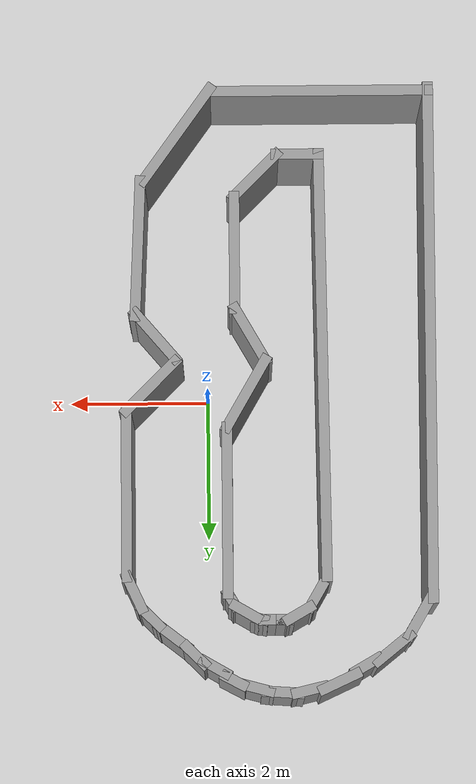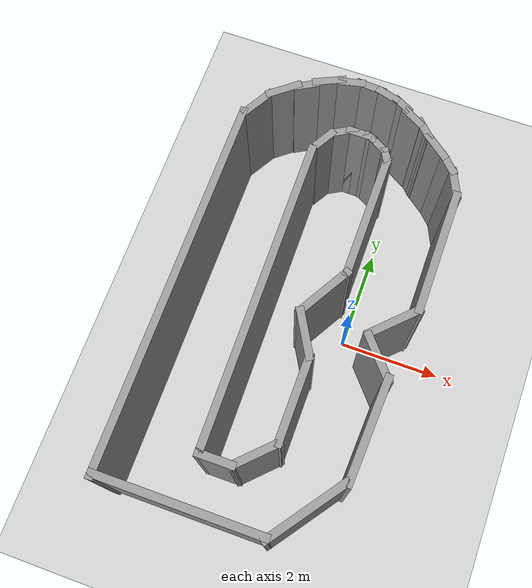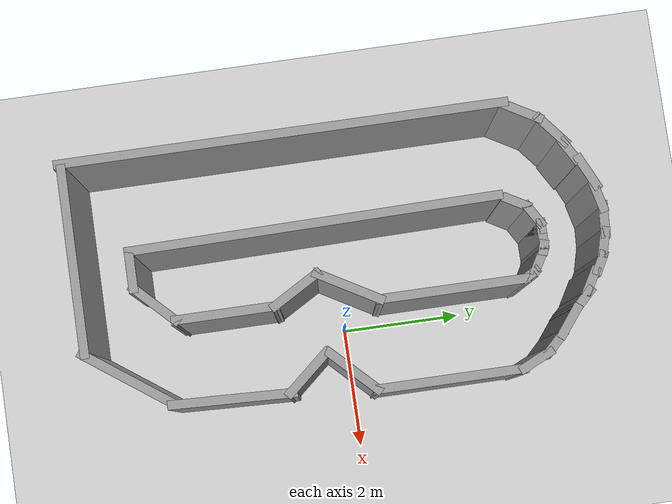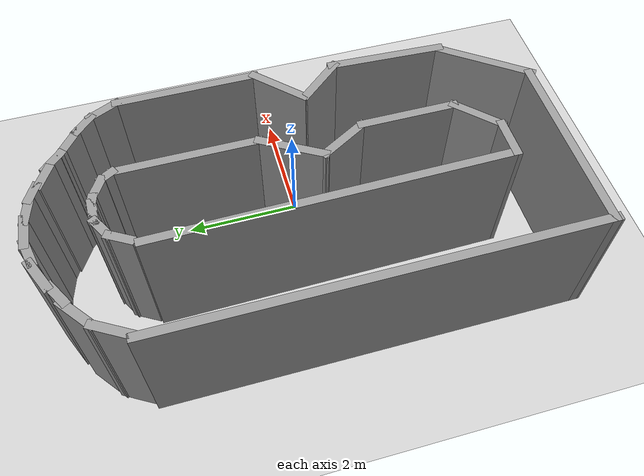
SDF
<sdf version="1.7">
 <world name="default">
  <scene><ambient>0.4 0.4 0.4 1</ambient><background>0.7 0.7 0.7 1</background><shadows>1</shadows></scene>
  <light name="sun" type="directional">
   <pose>0 0 10 0 -0 0</pose>
   <diffuse>0.8 0.8 0.8 1</diffuse>
   <specular>0.2 0.2 0.2 1</specular>
   <attenuation>
    <range>1000</range>
    <constant>0.9</constant>
    <linear>0.01</linear>
    <quadratic>0.001</quadratic>
   </attenuation>
   <direction>-0.5 0.1 -0.9</direction>
   <spot><inner_angle>0</inner_angle><outer_angle>0</outer_angle><falloff>0</falloff></spot>
  </light>
  <model name="ground_plane">
   <static>1</static>
   <link name="link">
    <collision name="collision">
     <geometry><plane><normal>0 0 1</normal><size>100 100</size></plane></geometry>
     <surface>
      <contact><collide_bitmask>65535</collide_bitmask></contact>
      <friction><ode><mu>100</mu><mu2>50</mu2></ode></friction>
     </surface>
    </collision>
    <visual name="visual">
     <cast_shadows>0</cast_shadows>
     <geometry><plane><normal>0 0 1</normal><size>100 100</size></plane></geometry>
     <material>
      <script><uri>file://media/materials/scripts/gazebo.material</uri><name>Gazebo/Grey</name></script>
     </material>
    </visual>
   </link>
  </model>
  <physics type="ode">
   <real_time_update_rate>1000</real_time_update_rate>
   <max_step_size>0.001</max_step_size>
   <real_time_factor>1</real_time_factor>
   <ode>
    <solver>
     <type>quick</type>
     <iters>150</iters>
     <precon_iters>0</precon_iters>
     <sor>1.4</sor>
     <use_dynamic_moi_rescaling>1</use_dynamic_moi_rescaling>
    </solver>
    <constraints>
     <cfm>1e-05</cfm>
     <erp>0.2</erp>
     <contact_max_correcting_vel>2000</contact_max_correcting_vel>
     <contact_surface_layer>0.01</contact_surface_layer>
    </constraints>
   </ode>
  </physics>
  <gravity>0 0 -9.8</gravity>
  <magnetic_field>6e-06 2.3e-05 -4.2e-05</magnetic_field>
  <atmosphere type="adiabatic"/>
  <spherical_coordinates>
   <surface_model>EARTH_WGS84</surface_model>
   <latitude_deg>0</latitude_deg>
   <longitude_deg>0</longitude_deg>
   <elevation>0</elevation>
   <heading_deg>0</heading_deg>
  </spherical_coordinates>
  <model name="world4">
   <pose>-0.988691 0.055441 0 0 -0 0</pose>
   <link name="Wall_0">
    <collision name="Wall_0_Collision">
     <geometry><box><size>3.24704 0.15 2.5</size></box></geometry>
     <pose>0 0 1.25 0 -0 0</pose>
    </collision>
    <visual name="Wall_0_Visual">
     <pose>0 0 1.25 0 -0 0</pose>
     <geometry><box><size>3.24704 0.15 2.5</size></box></geometry>
     <material>
      <script><uri>file://media/materials/scripts/gazebo.material</uri><name>Gazebo/Grey</name></script>
      <ambient>1 1 1 1</ambient>
     </material>
     <meta><layer>0</layer></meta>
    </visual>
    <pose>-0.621077 -4.25061 0 0 -0 3.14159</pose>
   </link>
   <link name="Wall_1">
    <collision name="Wall_1_Collision">
     <geometry><box><size>7.42288 0.15 2.5</size></box></geometry>
     <pose>0 0 1.25 0 -0 0</pose>
    </collision>
    <visual name="Wall_1_Visual">
     <pose>0 0 1.25 0 -0 0</pose>
     <geometry><box><size>7.42288 0.15 2.5</size></box></geometry>
     <material>
      <script><uri>file://media/materials/scripts/gazebo.material</uri><name>Gazebo/Grey</name></script>
      <ambient>1 1 1 1</ambient>
     </material>
     <meta><layer>0</layer></meta>
    </visual>
    <pose>-2.1696 -0.654396 0 0 -0 1.5708</pose>
   </link>
   <link name="Wall_15">
    <collision name="Wall_15_Collision">
     <geometry><box><size>0.75 0.15 2.5</size></box></geometry>
     <pose>0 0 1.25 0 -0 0</pose>
    </collision>
    <visual name="Wall_15_Visual">
     <pose>0 0 1.25 0 -0 0</pose>
     <geometry><box><size>0.75 0.15 2.5</size></box></geometry>
     <material>
      <script><uri>file://media/materials/scripts/gazebo.material</uri><name>Gazebo/Grey</name></script>
      <ambient>1 1 1 1</ambient>
     </material>
     <meta><layer>0</layer></meta>
    </visual>
    <pose>-1.97937 3.24185 0 0 -0 1.0472</pose>
   </link>
   <link name="Wall_16">
    <collision name="Wall_16_Collision">
     <geometry><box><size>0.726804 0.15 2.5</size></box></geometry>
     <pose>0 0 1.25 0 -0 0</pose>
    </collision>
    <visual name="Wall_16_Visual">
     <pose>0 0 1.25 0 -0 0</pose>
     <geometry><box><size>0.726804 0.15 2.5</size></box></geometry>
     <material>
      <script><uri>file://media/materials/scripts/gazebo.material</uri><name>Gazebo/Grey</name></script>
      <ambient>1 1 1 1</ambient>
     </material>
     <meta><layer>0</layer></meta>
    </visual>
    <pose>-1.60522 3.68312 0 0 -0 0.680536</pose>
   </link>
   <link name="Wall_17">
    <collision name="Wall_17_Collision">
     <geometry><box><size>0.5 0.15 2.5</size></box></geometry>
     <pose>0 0 1.25 0 -0 0</pose>
    </collision>
    <visual name="Wall_17_Visual">
     <pose>0 0 1.25 0 -0 0</pose>
     <geometry><box><size>0.5 0.15 2.5</size></box></geometry>
     <material>
      <script><uri>file://media/materials/scripts/gazebo.material</uri><name>Gazebo/Grey</name></script>
      <ambient>1 1 1 1</ambient>
     </material>
     <meta><layer>0</layer></meta>
    </visual>
    <pose>-1.2295 3.91186 0 0 -0 0.523599</pose>
   </link>
   <link name="Wall_18">
    <collision name="Wall_18_Collision">
     <geometry><box><size>0.661503 0.15 2.5</size></box></geometry>
     <pose>0 0 1.25 0 -0 0</pose>
    </collision>
    <visual name="Wall_18_Visual">
     <pose>0 0 1.25 0 -0 0</pose>
     <geometry><box><size>0.661503 0.15 2.5</size></box></geometry>
     <material>
      <script><uri>file://media/materials/scripts/gazebo.material</uri><name>Gazebo/Grey</name></script>
      <ambient>1 1 1 1</ambient>
     </material>
     <meta><layer>0</layer></meta>
    </visual>
    <pose>-0.845941 4.1472 0 0 -0 0.434299</pose>
   </link>
   <link name="Wall_19">
    <collision name="Wall_19_Collision">
     <geometry><box><size>0.538996 0.15 2.5</size></box></geometry>
     <pose>0 0 1.25 0 -0 0</pose>
    </collision>
    <visual name="Wall_19_Visual">
     <pose>0 0 1.25 0 -0 0</pose>
     <geometry><box><size>0.538996 0.15 2.5</size></box></geometry>
     <material>
      <script><uri>file://media/materials/scripts/gazebo.material</uri><name>Gazebo/Grey</name></script>
      <ambient>1 1 1 1</ambient>
     </material>
     <meta><layer>0</layer></meta>
    </visual>
    <pose>-0.424782 4.25988 0 0 -0 0.235031</pose>
   </link>
   <link name="Wall_20">
    <collision name="Wall_20_Collision">
     <geometry><box><size>0.609742 0.15 2.5</size></box></geometry>
     <pose>0 0 1.25 0 -0 0</pose>
    </collision>
    <visual name="Wall_20_Visual">
     <pose>0 0 1.25 0 -0 0</pose>
     <geometry><box><size>0.609742 0.15 2.5</size></box></geometry>
     <material>
      <script><uri>file://media/materials/scripts/gazebo.material</uri><name>Gazebo/Grey</name></script>
      <ambient>1 1 1 1</ambient>
     </material>
     <meta><layer>0</layer></meta>
    </visual>
    <pose>-0.04648 4.29013 0 0 -0 -0.065507</pose>
   </link>
   <link name="Wall_21">
    <collision name="Wall_21_Collision">
     <geometry><box><size>0.5 0.15 2.5</size></box></geometry>
     <pose>0 0 1.25 0 -0 0</pose>
    </collision>
    <visual name="Wall_21_Visual">
     <pose>0 0 1.25 0 -0 0</pose>
     <geometry><box><size>0.5 0.15 2.5</size></box></geometry>
     <material>
      <script><uri>file://media/materials/scripts/gazebo.material</uri><name>Gazebo/Grey</name></script>
      <ambient>1 1 1 1</ambient>
     </material>
     <meta><layer>0</layer></meta>
    </visual>
    <pose>0.311707 4.22979 0 0 -0 -0.261799</pose>
   </link>
   <link name="Wall_22">
    <collision name="Wall_22_Collision">
     <geometry><box><size>0.415638 0.15 2.5</size></box></geometry>
     <pose>0 0 1.25 0 -0 0</pose>
    </collision>
    <visual name="Wall_22_Visual">
     <pose>0 0 1.25 0 -0 0</pose>
     <geometry><box><size>0.415638 0.15 2.5</size></box></geometry>
     <material>
      <script><uri>file://media/materials/scripts/gazebo.material</uri><name>Gazebo/Grey</name></script>
      <ambient>1 1 1 1</ambient>
     </material>
     <meta><layer>0</layer></meta>
    </visual>
    <pose>0.638262 4.12217 0 0 -0 -0.488399</pose>
   </link>
   <link name="Wall_23">
    <collision name="Wall_23_Collision">
     <geometry><box><size>0.5 0.15 2.5</size></box></geometry>
     <pose>0 0 1.25 0 -0 0</pose>
    </collision>
    <visual name="Wall_23_Visual">
     <pose>0 0 1.25 0 -0 0</pose>
     <geometry><box><size>0.5 0.15 2.5</size></box></geometry>
     <material>
      <script><uri>file://media/materials/scripts/gazebo.material</uri><name>Gazebo/Grey</name></script>
      <ambient>1 1 1 1</ambient>
     </material>
     <meta><layer>0</layer></meta>
    </visual>
    <pose>0.907106 3.93213 0 0 -0 -0.523599</pose>
   </link>
   <link name="Wall_24">
    <collision name="Wall_24_Collision">
     <geometry><box><size>0.5 0.15 2.5</size></box></geometry>
     <pose>0 0 1.25 0 -0 0</pose>
    </collision>
    <visual name="Wall_24_Visual">
     <pose>0 0 1.25 0 -0 0</pose>
     <geometry><box><size>0.5 0.15 2.5</size></box></geometry>
     <material>
      <script><uri>file://media/materials/scripts/gazebo.material</uri><name>Gazebo/Grey</name></script>
      <ambient>1 1 1 1</ambient>
     </material>
     <meta><layer>0</layer></meta>
    </visual>
    <pose>1.1824 3.76111 0 0 -0 -0.785398</pose>
   </link>
   <link name="Wall_25">
    <collision name="Wall_25_Collision">
     <geometry><box><size>0.630267 0.15 2.5</size></box></geometry>
     <pose>0 0 1.25 0 -0 0</pose>
    </collision>
    <visual name="Wall_25_Visual">
     <pose>0 0 1.25 0 -0 0</pose>
     <geometry><box><size>0.630267 0.15 2.5</size></box></geometry>
     <material>
      <script><uri>file://media/materials/scripts/gazebo.material</uri><name>Gazebo/Grey</name></script>
      <ambient>1 1 1 1</ambient>
     </material>
     <meta><layer>0</layer></meta>
    </visual>
    <pose>1.49602 3.49036 0 0 -0 -0.658823</pose>
   </link>
   <link name="Wall_26">
    <collision name="Wall_26_Collision">
     <geometry><box><size>0.5 0.15 2.5</size></box></geometry>
     <pose>0 0 1.25 0 -0 0</pose>
    </collision>
    <visual name="Wall_26_Visual">
     <pose>0 0 1.25 0 -0 0</pose>
     <geometry><box><size>0.5 0.15 2.5</size></box></geometry>
     <material>
      <script><uri>file://media/materials/scripts/gazebo.material</uri><name>Gazebo/Grey</name></script>
      <ambient>1 1 1 1</ambient>
     </material>
     <meta><layer>0</layer></meta>
    </visual>
    <pose>1.80964 3.21961 0 0 -0 -0.785398</pose>
   </link>
   <link name="Wall_28">
    <collision name="Wall_28_Collision">
     <geometry><box><size>0.5 0.15 2.5</size></box></geometry>
     <pose>0 0 1.25 0 -0 0</pose>
    </collision>
    <visual name="Wall_28_Visual">
     <pose>0 0 1.25 0 -0 0</pose>
     <geometry><box><size>0.5 0.15 2.5</size></box></geometry>
     <material>
      <script><uri>file://media/materials/scripts/gazebo.material</uri><name>Gazebo/Grey</name></script>
      <ambient>1 1 1 1</ambient>
     </material>
     <meta><layer>0</layer></meta>
    </visual>
    <pose>-0.522443 2.94431 0 0 -0 1.0472</pose>
   </link>
   <link name="Wall_29">
    <collision name="Wall_29_Collision">
     <geometry><box><size>0.5 0.15 2.5</size></box></geometry>
     <pose>0 0 1.25 0 -0 0</pose>
    </collision>
    <visual name="Wall_29_Visual">
     <pose>0 0 1.25 0 -0 0</pose>
     <geometry><box><size>0.5 0.15 2.5</size></box></geometry>
     <material>
      <script><uri>file://media/materials/scripts/gazebo.material</uri><name>Gazebo/Grey</name></script>
      <ambient>1 1 1 1</ambient>
     </material>
     <meta><layer>0</layer></meta>
    </visual>
    <pose>-0.283389 3.18336 0 0 -0 0.523599</pose>
   </link>
   <link name="Wall_30">
    <collision name="Wall_30_Collision">
     <geometry><box><size>0.25 0.15 2.5</size></box></geometry>
     <pose>0 0 1.25 0 -0 0</pose>
    </collision>
    <visual name="Wall_30_Visual">
     <pose>0 0 1.25 0 -0 0</pose>
     <geometry><box><size>0.25 0.15 2.5</size></box></geometry>
     <material>
      <script><uri>file://media/materials/scripts/gazebo.material</uri><name>Gazebo/Grey</name></script>
      <ambient>1 1 1 1</ambient>
     </material>
     <meta><layer>0</layer></meta>
    </visual>
    <pose>-0.081834 3.27086 0 0 -0 0</pose>
   </link>
   <link name="Wall_33">
    <collision name="Wall_33_Collision">
     <geometry><box><size>0.5 0.15 2.5</size></box></geometry>
     <pose>0 0 1.25 0 -0 0</pose>
    </collision>
    <visual name="Wall_33_Visual">
     <pose>0 0 1.25 0 -0 0</pose>
     <geometry><box><size>0.5 0.15 2.5</size></box></geometry>
     <material>
      <script><uri>file://media/materials/scripts/gazebo.material</uri><name>Gazebo/Grey</name></script>
      <ambient>1 1 1 1</ambient>
     </material>
     <meta><layer>0</layer></meta>
    </visual>
    <pose>0.043166 3.27086 0 0 -0 0</pose>
   </link>
   <link name="Wall_34">
    <collision name="Wall_34_Collision">
     <geometry><box><size>0.25 0.15 2.5</size></box></geometry>
     <pose>0 0 1.25 0 -0 0</pose>
    </collision>
    <visual name="Wall_34_Visual">
     <pose>0 0 1.25 0 -0 0</pose>
     <geometry><box><size>0.25 0.15 2.5</size></box></geometry>
     <material>
      <script><uri>file://media/materials/scripts/gazebo.material</uri><name>Gazebo/Grey</name></script>
      <ambient>1 1 1 1</ambient>
     </material>
     <meta><layer>0</layer></meta>
    </visual>
    <pose>0.266462 3.25792 0 0 -0 -0.261799</pose>
   </link>
   <link name="Wall_35">
    <collision name="Wall_35_Collision">
     <geometry><box><size>0.5 0.15 2.5</size></box></geometry>
     <pose>0 0 1.25 0 -0 0</pose>
    </collision>
    <visual name="Wall_35_Visual">
     <pose>0 0 1.25 0 -0 0</pose>
     <geometry><box><size>0.5 0.15 2.5</size></box></geometry>
     <material>
      <script><uri>file://media/materials/scripts/gazebo.material</uri><name>Gazebo/Grey</name></script>
      <ambient>1 1 1 1</ambient>
     </material>
     <meta><layer>0</layer></meta>
    </visual>
    <pose>0.466313 3.15748 0 0 -0 -0.523599</pose>
   </link>
   <link name="Wall_36">
    <collision name="Wall_36_Collision">
     <geometry><box><size>0.25 0.15 2.5</size></box></geometry>
     <pose>0 0 1.25 0 -0 0</pose>
    </collision>
    <visual name="Wall_36_Visual">
     <pose>0 0 1.25 0 -0 0</pose>
     <geometry><box><size>0.25 0.15 2.5</size></box></geometry>
     <material>
      <script><uri>file://media/materials/scripts/gazebo.material</uri><name>Gazebo/Grey</name></script>
      <ambient>1 1 1 1</ambient>
     </material>
     <meta><layer>0</layer></meta>
    </visual>
    <pose>0.642867 3.02668 0 0 -0 -1.0472</pose>
   </link>
   <link name="Wall_37">
    <collision name="Wall_37_Collision">
     <geometry><box><size>0.25 0.15 2.5</size></box></geometry>
     <pose>0 0 1.25 0 -0 0</pose>
    </collision>
    <visual name="Wall_37_Visual">
     <pose>0 0 1.25 0 -0 0</pose>
     <geometry><box><size>0.25 0.15 2.5</size></box></geometry>
     <material>
      <script><uri>file://media/materials/scripts/gazebo.material</uri><name>Gazebo/Grey</name></script>
      <ambient>1 1 1 1</ambient>
     </material>
     <meta><layer>0</layer></meta>
    </visual>
    <pose>0.692867 2.94007 0 0 -0 -1.0472</pose>
   </link>
   <link name="Wall_38">
    <collision name="Wall_38_Collision">
     <geometry><box><size>2.5 0.15 2.5</size></box></geometry>
     <pose>0 0 1.25 0 -0 0</pose>
    </collision>
    <visual name="Wall_38_Visual">
     <pose>0 0 1.25 0 -0 0</pose>
     <geometry><box><size>2.5 0.15 2.5</size></box></geometry>
     <material>
      <script><uri>file://media/materials/scripts/gazebo.material</uri><name>Gazebo/Grey</name></script>
      <ambient>1 1 1 1</ambient>
     </material>
     <meta><layer>0</layer></meta>
    </visual>
    <pose>0.717867 1.72177 0 0 -0 -1.5708</pose>
   </link>
   <link name="Wall_39">
    <collision name="Wall_39_Collision">
     <geometry><box><size>1.25 0.15 2.5</size></box></geometry>
     <pose>0 0 1.25 0 -0 0</pose>
    </collision>
    <visual name="Wall_39_Visual">
     <pose>0 0 1.25 0 -0 0</pose>
     <geometry><box><size>1.25 0.15 2.5</size></box></geometry>
     <material>
      <script><uri>file://media/materials/scripts/gazebo.material</uri><name>Gazebo/Grey</name></script>
      <ambient>1 1 1 1</ambient>
     </material>
     <meta><layer>0</layer></meta>
    </visual>
    <pose>0.442867 0.070459 0 0 -0 -2.0944</pose>
   </link>
   <link name="Wall_41">
    <collision name="Wall_41_Collision">
     <geometry><box><size>1 0.15 2.5</size></box></geometry>
     <pose>0 0 1.25 0 -0 0</pose>
    </collision>
    <visual name="Wall_41_Visual">
     <pose>0 0 1.25 0 -0 0</pose>
     <geometry><box><size>1 0.15 2.5</size></box></geometry>
     <material>
      <script><uri>file://media/materials/scripts/gazebo.material</uri><name>Gazebo/Grey</name></script>
      <ambient>1 1 1 1</ambient>
     </material>
     <meta><layer>0</layer></meta>
    </visual>
    <pose>0.380367 -0.773916 0 0 -0 -1.0472</pose>
   </link>
   <link name="Wall_44">
    <collision name="Wall_44_Collision">
     <geometry><box><size>1.75 0.15 2.5</size></box></geometry>
     <pose>0 0 1.25 0 -0 0</pose>
    </collision>
    <visual name="Wall_44_Visual">
     <pose>0 0 1.25 0 -0 0</pose>
     <geometry><box><size>1.75 0.15 2.5</size></box></geometry>
     <material>
      <script><uri>file://media/materials/scripts/gazebo.material</uri><name>Gazebo/Grey</name></script>
      <ambient>1 1 1 1</ambient>
     </material>
     <meta><layer>0</layer></meta>
    </visual>
    <pose>0.592867 -1.94198 0 0 -0 -1.5708</pose>
   </link>
   <link name="Wall_45">
    <collision name="Wall_45_Collision">
     <geometry><box><size>1 0.15 2.5</size></box></geometry>
     <pose>0 0 1.25 0 -0 0</pose>
    </collision>
    <visual name="Wall_45_Visual">
     <pose>0 0 1.25 0 -0 0</pose>
     <geometry><box><size>1 0.15 2.5</size></box></geometry>
     <material>
      <script><uri>file://media/materials/scripts/gazebo.material</uri><name>Gazebo/Grey</name></script>
      <ambient>1 1 1 1</ambient>
     </material>
     <meta><layer>0</layer></meta>
    </visual>
    <pose>0.292347 -3.0425 0 0 -0 -2.35619</pose>
   </link>
   <link name="Wall_46">
    <collision name="Wall_46_Collision">
     <geometry><box><size>0.75 0.15 2.5</size></box></geometry>
     <pose>0 0 1.25 0 -0 0</pose>
    </collision>
    <visual name="Wall_46_Visual">
     <pose>0 0 1.25 0 -0 0</pose>
     <geometry><box><size>0.75 0.15 2.5</size></box></geometry>
     <material>
      <script><uri>file://media/materials/scripts/gazebo.material</uri><name>Gazebo/Grey</name></script>
      <ambient>1 1 1 1</ambient>
     </material>
     <meta><layer>0</layer></meta>
    </visual>
    <pose>-0.308174 -3.34302 0 0 -0 3.14159</pose>
   </link>
   <link name="Wall_47">
    <collision name="Wall_47_Collision">
     <geometry><box><size>6.15989 0.15 2.5</size></box></geometry>
     <pose>0 0 1.25 0 -0 0</pose>
    </collision>
    <visual name="Wall_47_Visual">
     <pose>0 0 1.25 0 -0 0</pose>
     <geometry><box><size>6.15989 0.15 2.5</size></box></geometry>
     <material>
      <script><uri>file://media/materials/scripts/gazebo.material</uri><name>Gazebo/Grey</name></script>
      <ambient>1 1 1 1</ambient>
     </material>
     <meta><layer>0</layer></meta>
    </visual>
    <pose>-0.643154 -0.338275 0 0 -0 1.58244</pose>
   </link>
   <link name="Wall_5">
    <collision name="Wall_5_Collision">
     <geometry><box><size>1.77628 0.15 2.5</size></box></geometry>
     <pose>0 0 1.25 0 -0 0</pose>
    </collision>
    <visual name="Wall_5_Visual">
     <pose>0 0 1.25 0 -0 0</pose>
     <geometry><box><size>1.77628 0.15 2.5</size></box></geometry>
     <material>
      <script><uri>file://media/materials/scripts/gazebo.material</uri><name>Gazebo/Grey</name></script>
      <ambient>1 1 1 1</ambient>
     </material>
     <meta><layer>0</layer></meta>
    </visual>
    <pose>1.40474 -3.63252 0 0 -0 0.943473</pose>
   </link>
   <link name="Wall_50">
    <collision name="Wall_50_Collision">
     <geometry><box><size>2.5 0.15 2.5</size></box></geometry>
     <pose>0 0 1.25 0 -0 0</pose>
    </collision>
    <visual name="Wall_50_Visual">
     <pose>0 0 1.25 0 -0 0</pose>
     <geometry><box><size>2.5 0.15 2.5</size></box></geometry>
     <material>
      <script><uri>file://media/materials/scripts/gazebo.material</uri><name>Gazebo/Grey</name></script>
      <ambient>1 1 1 1</ambient>
     </material>
     <meta><layer>0</layer></meta>
    </visual>
    <pose>2.13853 1.47922 0 0 -0 1.5708</pose>
   </link>
   <link name="Wall_52">
    <collision name="Wall_52_Collision">
     <geometry><box><size>0.636968 0.15 2.5</size></box></geometry>
     <pose>0 0 1.25 0 -0 0</pose>
    </collision>
    <visual name="Wall_52_Visual">
     <pose>0 0 1.25 0 -0 0</pose>
     <geometry><box><size>0.636968 0.15 2.5</size></box></geometry>
     <material>
      <script><uri>file://media/materials/scripts/gazebo.material</uri><name>Gazebo/Grey</name></script>
      <ambient>1 1 1 1</ambient>
     </material>
     <meta><layer>0</layer></meta>
    </visual>
    <pose>2.03596 2.87504 0 0 -0 -1.13595</pose>
   </link>
   <link name="Wall_6">
    <collision name="Wall_6_Collision">
     <geometry><box><size>2.08213 0.15 2.5</size></box></geometry>
     <pose>0 0 1.25 0 -0 0</pose>
    </collision>
    <visual name="Wall_6_Visual">
     <pose>0 0 1.25 0 -0 0</pose>
     <geometry><box><size>2.08213 0.15 2.5</size></box></geometry>
     <material>
      <script><uri>file://media/materials/scripts/gazebo.material</uri><name>Gazebo/Grey</name></script>
      <ambient>1 1 1 1</ambient>
     </material>
     <meta><layer>0</layer></meta>
    </visual>
    <pose>1.96249 -2.00897 0 0 -0 1.52914</pose>
   </link>
   <link name="Wall_7">
    <collision name="Wall_7_Collision">
     <geometry><box><size>1.00943 0.15 2.5</size></box></geometry>
     <pose>0 0 1.25 0 -0 0</pose>
    </collision>
    <visual name="Wall_7_Visual">
     <pose>0 0 1.25 0 -0 0</pose>
     <geometry><box><size>1.00943 0.15 2.5</size></box></geometry>
     <material>
      <script><uri>file://media/materials/scripts/gazebo.material</uri><name>Gazebo/Grey</name></script>
      <ambient>1 1 1 1</ambient>
     </material>
     <meta><layer>0</layer></meta>
    </visual>
    <pose>1.72194 -0.758672 0 0 -0 2.28286</pose>
   </link>
   <link name="Wall_8">
    <collision name="Wall_8_Collision">
     <geometry><box><size>1.13622 0.15 2.5</size></box></geometry>
     <pose>0 0 1.25 0 -0 0</pose>
    </collision>
    <visual name="Wall_8_Visual">
     <pose>0 0 1.25 0 -0 0</pose>
     <geometry><box><size>1.13622 0.15 2.5</size></box></geometry>
     <material>
      <script><uri>file://media/materials/scripts/gazebo.material</uri><name>Gazebo/Grey</name></script>
      <ambient>1 1 1 1</ambient>
     </material>
     <meta><layer>0</layer></meta>
    </visual>
    <pose>1.78985 -0.044464 0 0 -0 0.785398</pose>
   </link>
   <static>1</static>
  </model>
 </world>
</sdf>
